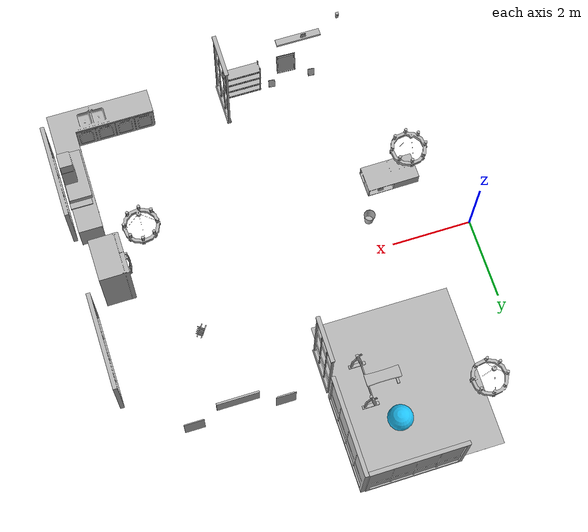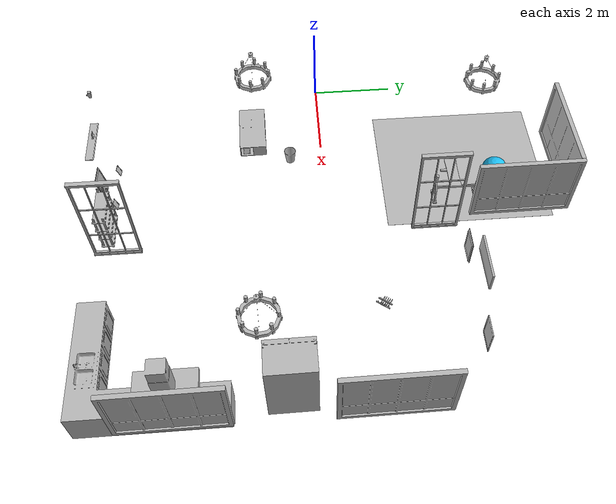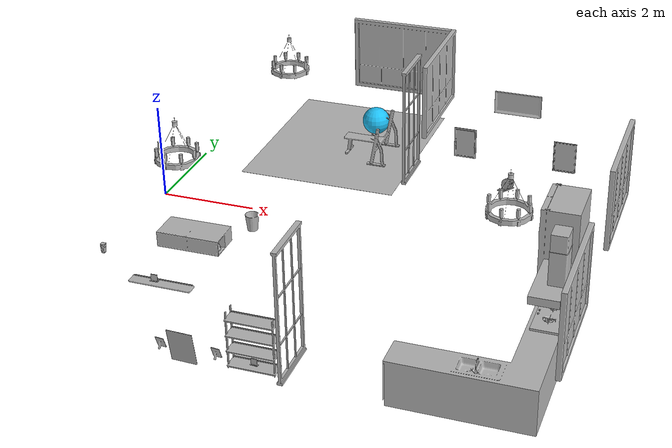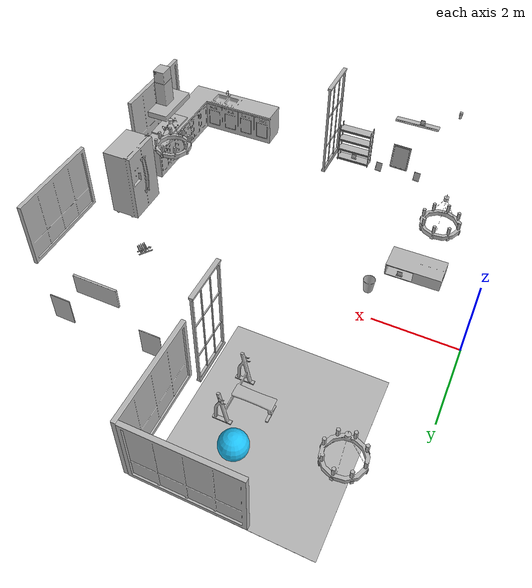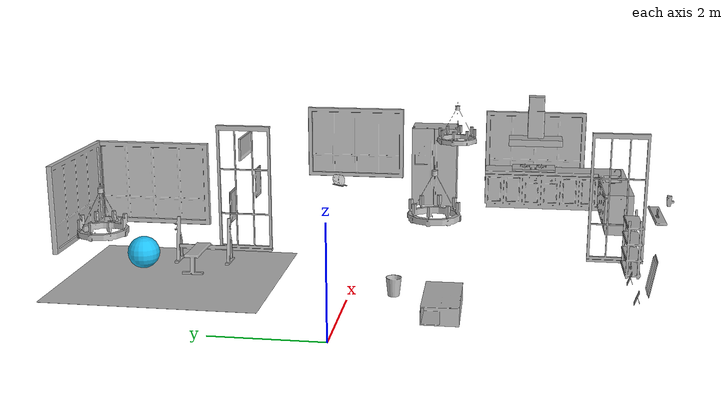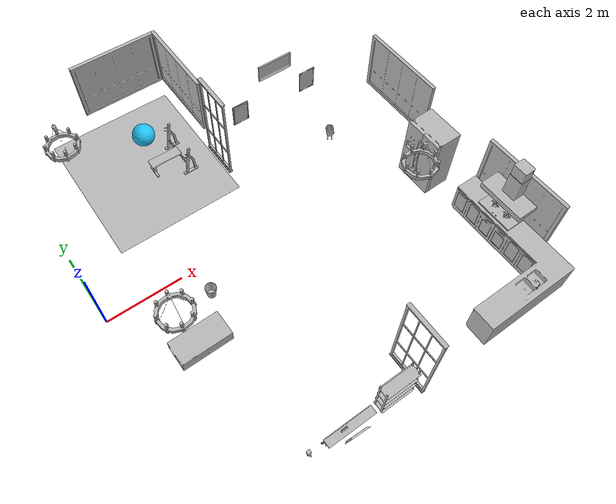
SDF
<sdf version="1.7">
 <world name="default">
  <model name="Ball_01_001">
   <frame name="aws_robomaker_residential_Ball_01::__model__" attached_to="aws_robomaker_residential_Ball_01::link">
    <pose relative_to="__model__">0 0 0 0 -0 0</pose>
   </frame>
   <link name="aws_robomaker_residential_Ball_01::link">
    <inertial>
     <mass>0.12</mass>
     <inertia>
      <ixx>0.030752</ixx>
      <ixy>0</ixy>
      <ixz>0</ixz>
      <iyy>0.030752</iyy>
      <iyz>0</iyz>
      <izz>0.030752</izz>
     </inertia>
    </inertial>
    <collision name="collision">
     <geometry><sphere><radius>0.31</radius></sphere></geometry>
     <surface>
      <friction><ode><mu>0.85</mu><mu2>0.85</mu2></ode></friction>
      <contact><ode><kd>8500</kd><max_vel>5.1</max_vel></ode></contact>
     </surface>
    </collision>
    <visual name="visual">
     <geometry><sphere><radius>0.31</radius></sphere></geometry>
     <material><diffuse>0.12 0.76 0.97 1</diffuse><ambient>0.03 0.21 0.27 1</ambient></material>
     <meta><layer>1</layer></meta>
    </visual>
    <pose relative_to="aws_robomaker_residential_Ball_01::__model__">0 0 0 0 -0 0</pose>
   </link>
   <pose>3.2955 4.22567 0.31 0 -0 0</pose>
  </model>
  <model name="Board_01_001">
   <frame name="aws_robomaker_residential_Board_01::__model__" attached_to="aws_robomaker_residential_Board_01::link">
    <pose relative_to="__model__">0 0 0 0 -0 0</pose>
   </frame>
   <link name="aws_robomaker_residential_Board_01::link">
    <inertial><mass>1</mass></inertial>
    <collision name="collision">
     <geometry>
      <mesh>
       <uri>file://models/aws_robomaker_residential_Board_01/meshes/aws_Board_01_collision.DAE</uri>
       <scale>1 1 1</scale>
      </mesh>
     </geometry>
    </collision>
    <visual name="visual">
     <geometry>
      <mesh><uri>file://models/aws_robomaker_residential_Board_01/meshes/aws_Board_01_visual.DAE</uri></mesh>
     </geometry>
     <meta><layer>2</layer></meta>
    </visual>
    <pose relative_to="aws_robomaker_residential_Board_01::__model__">0 0 0 0 -0 0</pose>
   </link>
   <static>1</static>
   <pose>2.77907 -5.3927 1.53817 0 -0 0</pose>
  </model>
  <model name="Chandelier_01_001">
   <frame name="aws_robomaker_residential_Chandelier_01::__model__" attached_to="aws_robomaker_residential_Chandelier_01::link">
    <pose relative_to="__model__">0 0 0 0 -0 0</pose>
   </frame>
   <link name="aws_robomaker_residential_Chandelier_01::link">
    <inertial><mass>1</mass></inertial>
    <collision name="collision">
     <geometry>
      <mesh>
       <uri>file://models/aws_robomaker_residential_Chandelier_01/meshes/aws_Chandelier_01_collision.DAE</uri>
       <scale>1 1 1</scale>
      </mesh>
     </geometry>
    </collision>
    <visual name="visual">
     <geometry>
      <mesh>
       <uri>file://models/aws_robomaker_residential_Chandelier_01/meshes/aws_Chandelier_01_visual.DAE</uri>
      </mesh>
     </geometry>
     <meta><layer>2</layer></meta>
    </visual>
    <pose relative_to="aws_robomaker_residential_Chandelier_01::__model__">0 0 0 0 -0 0</pose>
   </link>
   <static>1</static>
   <pose>1.22106 4.15574 1.295 0 -0 0</pose>
  </model>
  <model name="Chandelier_01_003">
   <frame name="aws_robomaker_residential_Chandelier_01::__model__" attached_to="aws_robomaker_residential_Chandelier_01::link">
    <pose relative_to="__model__">0 0 0 0 -0 0</pose>
   </frame>
   <link name="aws_robomaker_residential_Chandelier_01::link">
    <inertial><mass>1</mass></inertial>
    <collision name="collision">
     <geometry>
      <mesh>
       <uri>file://models/aws_robomaker_residential_Chandelier_01/meshes/aws_Chandelier_01_collision.DAE</uri>
       <scale>1 1 1</scale>
      </mesh>
     </geometry>
    </collision>
    <visual name="visual">
     <geometry>
      <mesh>
       <uri>file://models/aws_robomaker_residential_Chandelier_01/meshes/aws_Chandelier_01_visual.DAE</uri>
      </mesh>
     </geometry>
     <meta><layer>2</layer></meta>
    </visual>
    <pose relative_to="aws_robomaker_residential_Chandelier_01::__model__">0 0 0 0 -0 0</pose>
   </link>
   <static>1</static>
   <pose>7.82406 -1.59 1.751 0 -0 0</pose>
  </model>
  <model name="Chandelier_01_004">
   <frame name="aws_robomaker_residential_Chandelier_01::__model__" attached_to="aws_robomaker_residential_Chandelier_01::link">
    <pose relative_to="__model__">0 0 0 0 -0 0</pose>
   </frame>
   <link name="aws_robomaker_residential_Chandelier_01::link">
    <inertial><mass>1</mass></inertial>
    <collision name="collision">
     <geometry>
      <mesh>
       <uri>file://models/aws_robomaker_residential_Chandelier_01/meshes/aws_Chandelier_01_collision.DAE</uri>
       <scale>1 1 1</scale>
      </mesh>
     </geometry>
    </collision>
    <visual name="visual">
     <geometry>
      <mesh>
       <uri>file://models/aws_robomaker_residential_Chandelier_01/meshes/aws_Chandelier_01_visual.DAE</uri>
      </mesh>
     </geometry>
     <meta><layer>2</layer></meta>
    </visual>
    <pose relative_to="aws_robomaker_residential_Chandelier_01::__model__">0 0 0 0 -0 0</pose>
   </link>
   <static>1</static>
   <pose>1.22106 -1.59204 1.7873 0 -0 0</pose>
  </model>
  <model name="Carpet_01_002">
   <frame name="aws_robomaker_residential_Carpet_01::__model__" attached_to="aws_robomaker_residential_Carpet_01::link">
    <pose relative_to="__model__">0 0 0 0 -0 0</pose>
   </frame>
   <link name="aws_robomaker_residential_Carpet_01::link">
    <inertial><mass>8.1</mass></inertial>
    <collision name="collision">
     <geometry>
      <mesh>
       <uri>file://models/aws_robomaker_residential_Carpet_01/meshes/aws_Carpet_01_collision.DAE</uri>
       <scale>1 1 0.95</scale>
      </mesh>
     </geometry>
     <pose>0 0 -0.01 0 -0 0</pose>
    </collision>
    <visual name="visual">
     <geometry>
      <mesh><uri>file://models/aws_robomaker_residential_Carpet_01/meshes/aws_Carpet_01_visual.DAE</uri></mesh>
     </geometry>
     <meta><layer>1</layer></meta>
    </visual>
    <pose relative_to="aws_robomaker_residential_Carpet_01::__model__">0 0 0 0 -0 0</pose>
   </link>
   <static>1</static>
   <pose>2.85405 3.45 0.000585 0 -0 0</pose>
  </model>
  <model name="CoffeeTable_01_001">
   <frame name="aws_robomaker_residential_CoffeeTable_01::__model__" attached_to="aws_robomaker_residential_CoffeeTable_01::link">
    <pose relative_to="__model__">0 0 0 0 -0 0</pose>
   </frame>
   <link name="aws_robomaker_residential_CoffeeTable_01::link">
    <inertial>
     <mass>21.7</mass>
     <inertia><ixx>0.81375</ixx><ixy>0</ixy><ixz>0</ixz><iyy>2.76675</iyy><iyz>0</iyz><izz>3.254</izz></inertia>
    </inertial>
    <collision name="collision">
     <geometry>
      <mesh>
       <uri>file://models/aws_robomaker_residential_CoffeeTable_01/meshes/aws_CoffeeTable_01_collision.DAE</uri>
       <scale>1 1 1</scale>
      </mesh>
     </geometry>
     <surface><contact><ode><max_vel>0.01</max_vel></ode></contact></surface>
    </collision>
    <visual name="visual">
     <geometry>
      <mesh>
       <uri>file://models/aws_robomaker_residential_CoffeeTable_01/meshes/aws_CoffeeTable_01_visual.DAE</uri>
      </mesh>
     </geometry>
     <meta><layer>1</layer></meta>
    </visual>
    <pose relative_to="aws_robomaker_residential_CoffeeTable_01::__model__">0 0 0 0 -0 0</pose>
   </link>
   <static>1</static>
   <pose>1.5123 -1.73344 0.041983 0 -0 0.01</pose>
  </model>
  <model name="CookingBench_01_001">
   <frame name="aws_robomaker_residential_CookingBench_01::__model__" attached_to="aws_robomaker_residential_CookingBench_01::link">
    <pose relative_to="__model__">0 0 0 0 -0 0</pose>
   </frame>
   <link name="aws_robomaker_residential_CookingBench_01::link">
    <inertial><mass>1</mass></inertial>
    <collision name="collision">
     <geometry>
      <mesh>
       <uri>file://models/aws_robomaker_residential_CookingBench_01/meshes/aws_CookingBench_01_collision.DAE</uri>
       <scale>1 1 1</scale>
      </mesh>
     </geometry>
    </collision>
    <visual name="visual">
     <geometry>
      <mesh>
       <uri>file://models/aws_robomaker_residential_CookingBench_01/meshes/aws_CookingBench_01_visual.DAE</uri>
      </mesh>
     </geometry>
     <meta><layer>1</layer></meta>
    </visual>
    <pose relative_to="aws_robomaker_residential_CookingBench_01::__model__">0 0 0 0 -0 0</pose>
   </link>
   <pose>9.03838 -3.35114 0.90361 0 -0 3.13713</pose>
   <static>1</static>
  </model>
  <model name="FitnessEquipment_01_001">
   <frame name="aws_robomaker_residential_FitnessEquipment_01::__model__" attached_to="aws_robomaker_residential_FitnessEquipment_01::link">
    <pose relative_to="__model__">0 0 0 0 -0 0</pose>
   </frame>
   <link name="aws_robomaker_residential_FitnessEquipment_01::link">
    <inertial><mass>80</mass></inertial>
    <collision name="collision">
     <geometry>
      <mesh>
       <uri>file://models/aws_robomaker_residential_FitnessEquipment_01/meshes/aws_FitnessEquipment_01_collision.DAE</uri>
       <scale>1 1 1</scale>
      </mesh>
     </geometry>
    </collision>
    <visual name="visual">
     <geometry>
      <mesh>
       <uri>file://models/aws_robomaker_residential_FitnessEquipment_01/meshes/aws_FitnessEquipment_01_visual.DAE</uri>
      </mesh>
     </geometry>
     <meta><layer>1</layer></meta>
    </visual>
    <pose relative_to="aws_robomaker_residential_FitnessEquipment_01::__model__">0 0 0 0 -0 0</pose>
   </link>
   <static>1</static>
   <pose>3.48472 3.1691 0.003168 0 -0 0</pose>
  </model>
  <model name="FoldingDoor_02_001">
   <frame name="aws_robomaker_residential_FoldingDoor_02::__model__" attached_to="aws_robomaker_residential_FoldingDoor_02::link">
    <pose relative_to="__model__">0 0 0 0 -0 0</pose>
   </frame>
   <link name="aws_robomaker_residential_FoldingDoor_02::link">
    <inertial><mass>1</mass></inertial>
    <collision name="collision">
     <geometry>
      <mesh>
       <uri>file://models/aws_robomaker_residential_FoldingDoor_02/meshes/aws_FoldingDoor_02_collision.DAE</uri>
       <scale>1 1 1</scale>
      </mesh>
     </geometry>
    </collision>
    <visual name="visual">
     <geometry>
      <mesh>
       <uri>file://models/aws_robomaker_residential_FoldingDoor_02/meshes/aws_FoldingDoor_02_visual.DAE</uri>
      </mesh>
     </geometry>
     <meta><layer>2</layer></meta>
    </visual>
    <pose relative_to="aws_robomaker_residential_FoldingDoor_02::__model__">0 0 0 0 -0 0</pose>
   </link>
   <static>1</static>
   <pose>4.67423 2.46451 0 0 -0 3.14159</pose>
  </model>
  <model name="FoldingDoor_02_002">
   <frame name="aws_robomaker_residential_FoldingDoor_02::__model__" attached_to="aws_robomaker_residential_FoldingDoor_02::link">
    <pose relative_to="__model__">0 0 0 0 -0 0</pose>
   </frame>
   <link name="aws_robomaker_residential_FoldingDoor_02::link">
    <inertial><mass>1</mass></inertial>
    <collision name="collision">
     <geometry>
      <mesh>
       <uri>file://models/aws_robomaker_residential_FoldingDoor_02/meshes/aws_FoldingDoor_02_collision.DAE</uri>
       <scale>1 1 1</scale>
      </mesh>
     </geometry>
    </collision>
    <visual name="visual">
     <geometry>
      <mesh>
       <uri>file://models/aws_robomaker_residential_FoldingDoor_02/meshes/aws_FoldingDoor_02_visual.DAE</uri>
      </mesh>
     </geometry>
     <meta><layer>2</layer></meta>
    </visual>
    <pose relative_to="aws_robomaker_residential_FoldingDoor_02::__model__">0 0 0 0 -0 0</pose>
   </link>
   <static>1</static>
   <pose>4.8912 -4.84968 0 0 -0 0</pose>
  </model>
  <model name="KitchenCabinet_01_001">
   <frame name="aws_robomaker_residential_KitchenCabinet_01::__model__" attached_to="aws_robomaker_residential_KitchenCabinet_01::link">
    <pose relative_to="__model__">0 0 0 0 -0 0</pose>
   </frame>
   <link name="aws_robomaker_residential_KitchenCabinet_01::link">
    <inertial><mass>1</mass></inertial>
    <collision name="collision">
     <geometry>
      <mesh>
       <uri>file://models/aws_robomaker_residential_KitchenCabinet_01/meshes/aws_KitchenCabinet_01_collision.DAE</uri>
       <scale>1 1 1</scale>
      </mesh>
     </geometry>
    </collision>
    <visual name="visual">
     <geometry>
      <mesh>
       <uri>file://models/aws_robomaker_residential_KitchenCabinet_01/meshes/aws_KitchenCabinet_01_visual.DAE</uri>
      </mesh>
     </geometry>
     <meta><layer>1</layer></meta>
    </visual>
    <pose relative_to="aws_robomaker_residential_KitchenCabinet_01::__model__">0 0 0 0 -0 0</pose>
   </link>
   <static>1</static>
   <pose>8.00201 -3.83651 0.012068 0 0 -3.14</pose>
  </model>
  <model name="LightC_01_001">
   <frame name="aws_robomaker_residential_LightC_01::__model__" attached_to="aws_robomaker_residential_LightC_01::link">
    <pose relative_to="__model__">0 0 0 0 -0 0</pose>
   </frame>
   <link name="aws_robomaker_residential_LightC_01::link">
    <inertial><mass>1</mass></inertial>
    <collision name="collision">
     <geometry>
      <mesh>
       <uri>file://models/aws_robomaker_residential_LightC_01/meshes/aws_LightC_01_collision.DAE</uri>
       <scale>1 1 1</scale>
      </mesh>
     </geometry>
    </collision>
    <visual name="visual">
     <geometry>
      <mesh><uri>file://models/aws_robomaker_residential_LightC_01/meshes/aws_LightC_01_visual.DAE</uri></mesh>
     </geometry>
     <meta><layer>2</layer></meta>
    </visual>
    <pose relative_to="aws_robomaker_residential_LightC_01::__model__">0 0 0 0 -0 0</pose>
   </link>
   <static>1</static>
   <pose>1.76957 -5.44437 2 0 -0 0</pose>
  </model>
  <model name="PortraitB_02">
   <frame name="aws_robomaker_residential_PortraitB_02::__model__" attached_to="aws_robomaker_residential_PortraitB_02::link">
    <pose relative_to="__model__">0 0 0 0 -0 0</pose>
   </frame>
   <link name="aws_robomaker_residential_PortraitB_02::link">
    <inertial><mass>1</mass></inertial>
    <collision name="collision">
     <geometry>
      <mesh>
       <uri>file://models/aws_robomaker_residential_PortraitB_02/meshes/aws_PortraitB_01_collision.DAE</uri>
       <scale>1 1 1</scale>
      </mesh>
     </geometry>
    </collision>
    <visual name="visual">
     <geometry>
      <mesh>
       <uri>file://models/aws_robomaker_residential_PortraitB_02/meshes/aws_PortraitB_01_visual.DAE</uri>
      </mesh>
     </geometry>
     <meta><layer>2</layer></meta>
    </visual>
    <pose relative_to="aws_robomaker_residential_PortraitB_02::__model__">0 0 0 0 -0 0</pose>
   </link>
   <static>1</static>
   <pose>5.73702 3.08031 0.3 0 -0 0</pose>
  </model>
  <model name="PortraitB_03">
   <frame name="aws_robomaker_residential_PortraitB_03::__model__" attached_to="aws_robomaker_residential_PortraitB_03::link">
    <pose relative_to="__model__">0 0 0 0 -0 0</pose>
   </frame>
   <link name="aws_robomaker_residential_PortraitB_03::link">
    <inertial><mass>1</mass></inertial>
    <collision name="collision">
     <geometry>
      <mesh>
       <uri>file://models/aws_robomaker_residential_PortraitB_03/meshes/aws_PortraitB_01_collision.DAE</uri>
       <scale>1 1 1</scale>
      </mesh>
     </geometry>
    </collision>
    <visual name="visual">
     <geometry>
      <mesh>
       <uri>file://models/aws_robomaker_residential_PortraitB_03/meshes/aws_PortraitB_01_visual.DAE</uri>
      </mesh>
     </geometry>
     <meta><layer>2</layer></meta>
    </visual>
    <pose relative_to="aws_robomaker_residential_PortraitB_03::__model__">0 0 0 0 -0 0</pose>
   </link>
   <static>1</static>
   <pose>3.07138 -5.34937 0.005494 -0.168428 -0 3.10423</pose>
  </model>
  <model name="PortraitA_02">
   <frame name="aws_robomaker_residential_PortraitA_02::__model__" attached_to="aws_robomaker_residential_PortraitA_02::link">
    <pose relative_to="__model__">0 0 0 0 -0 0</pose>
   </frame>
   <link name="aws_robomaker_residential_PortraitA_02::link">
    <inertial><mass>1</mass></inertial>
    <collision name="collision">
     <geometry>
      <mesh>
       <uri>file://models/aws_robomaker_residential_PortraitA_02/meshes/aws_PortraitA_01_collision.DAE</uri>
       <scale>1 1 1</scale>
      </mesh>
     </geometry>
    </collision>
    <visual name="visual">
     <geometry>
      <mesh>
       <uri>file://models/aws_robomaker_residential_PortraitA_02/meshes/aws_PortraitA_01_visual.DAE</uri>
      </mesh>
     </geometry>
     <meta><layer>2</layer></meta>
    </visual>
    <pose relative_to="aws_robomaker_residential_PortraitA_02::__model__">0 0 0 0 -0 0</pose>
   </link>
   <static>1</static>
   <pose>7.93702 3.08031 0.3 0 -0 3.14</pose>
  </model>
  <model name="PortraitD_02">
   <frame name="aws_robomaker_residential_PortraitD_02::__model__" attached_to="aws_robomaker_residential_PortraitD_02::link">
    <pose relative_to="__model__">0 0 0 0 -0 0</pose>
   </frame>
   <link name="aws_robomaker_residential_PortraitD_02::link">
    <inertial><mass>1.5</mass></inertial>
    <collision name="collision">
     <geometry>
      <mesh>
       <uri>file://models/aws_robomaker_residential_PortraitD_02/meshes/aws_PortraitD_01_collision.DAE</uri>
       <scale>1 1 1</scale>
      </mesh>
     </geometry>
    </collision>
    <visual name="visual">
     <geometry>
      <mesh>
       <uri>file://models/aws_robomaker_residential_PortraitD_02/meshes/aws_PortraitD_01_visual.DAE</uri>
      </mesh>
     </geometry>
     <meta><layer>2</layer></meta>
    </visual>
    <pose relative_to="aws_robomaker_residential_PortraitD_02::__model__">0 0 0 0 -0 0</pose>
   </link>
   <static>1</static>
   <pose>6.87018 3.08031 1.48844 0 -0 0</pose>
  </model>
  <model name="DeskPortraitA_02">
   <frame name="aws_robomaker_residential_DeskPortraitA_02::__model__" attached_to="aws_robomaker_residential_DeskPortraitA_02::link">
    <pose relative_to="__model__">0 0 0 0 -0 0</pose>
   </frame>
   <link name="aws_robomaker_residential_DeskPortraitA_02::link">
    <inertial>
     <mass>1</mass>
     <inertia><ixx>0.0835</ixx><ixy>0</ixy><ixz>0</ixz><iyy>0.16</iyy><iyz>0</iyz><izz>0.08347</izz></inertia>
    </inertial>
    <collision name="collision">
     <geometry>
      <mesh>
       <uri>file://models/aws_robomaker_residential_DeskPortraitA_02/meshes/aws_DeskPortraitA_01_collision.DAE</uri>
       <scale>1 1 1</scale>
      </mesh>
     </geometry>
    </collision>
    <visual name="visual">
     <geometry>
      <mesh>
       <uri>file://models/aws_robomaker_residential_DeskPortraitA_02/meshes/aws_DeskPortraitA_01_visual.DAE</uri>
      </mesh>
     </geometry>
     <meta><layer>1</layer></meta>
    </visual>
    <pose relative_to="aws_robomaker_residential_DeskPortraitA_02::__model__">0 0 0 0 -0 0</pose>
   </link>
   <pose>2.04609 -1.89292 0.065168 -0.000539 -3e-06 1.57625</pose>
  </model>
  <model name="DeskPortraitD_01">
   <frame name="aws_robomaker_residential_DeskPortraitD_01::__model__" attached_to="aws_robomaker_residential_DeskPortraitD_01::link">
    <pose relative_to="__model__">0 0 0 0 -0 0</pose>
   </frame>
   <link name="aws_robomaker_residential_DeskPortraitD_01::link">
    <inertial>
     <mass>0.4</mass>
     <inertia><ixx>0.0616</ixx><ixy>0</ixy><ixz>0</ixz><iyy>0.1313</iyy><iyz>0</iyz><izz>0.0803</izz></inertia>
    </inertial>
    <collision name="collision">
     <geometry>
      <mesh>
       <uri>file://models/aws_robomaker_residential_DeskPortraitD_01/meshes/aws_DeskPortraitD_01_collision.DAE</uri>
       <scale>1 1 1</scale>
      </mesh>
     </geometry>
     <surface>
      <friction><ode><mu>0.7</mu><mu2>0.7</mu2></ode></friction>
      <contact><ode><kd>28500</kd></ode></contact>
     </surface>
    </collision>
    <visual name="visual">
     <geometry>
      <mesh>
       <uri>file://models/aws_robomaker_residential_DeskPortraitD_01/meshes/aws_DeskPortraitD_01_visual.DAE</uri>
      </mesh>
     </geometry>
     <meta><layer>1</layer></meta>
    </visual>
    <pose relative_to="aws_robomaker_residential_DeskPortraitD_01::__model__">0 0 0 0 -0 0</pose>
   </link>
   <pose>2.64556 -5.37622 1.57416 0 -2e-06 -3.11283</pose>
  </model>
  <model name="DeskPortraitD_03">
   <frame name="aws_robomaker_residential_DeskPortraitD_03::__model__" attached_to="aws_robomaker_residential_DeskPortraitD_03::link">
    <pose relative_to="__model__">0 0 0 0 -0 0</pose>
   </frame>
   <link name="aws_robomaker_residential_DeskPortraitD_03::link">
    <inertial>
     <mass>0.4</mass>
     <inertia><ixx>0.0616</ixx><ixy>0</ixy><ixz>0</ixz><iyy>0.1313</iyy><iyz>0</iyz><izz>0.0803</izz></inertia>
    </inertial>
    <collision name="collision">
     <geometry>
      <mesh>
       <uri>file://models/aws_robomaker_residential_DeskPortraitD_03/meshes/aws_DeskPortraitD_01_collision.DAE</uri>
       <scale>1 1 1</scale>
      </mesh>
     </geometry>
     <surface>
      <friction><ode><mu>0.7</mu><mu2>0.7</mu2></ode></friction>
      <contact><ode><kd>28500</kd></ode></contact>
     </surface>
    </collision>
    <visual name="visual">
     <geometry>
      <mesh>
       <uri>file://models/aws_robomaker_residential_DeskPortraitD_03/meshes/aws_DeskPortraitD_01_visual.DAE</uri>
      </mesh>
     </geometry>
     <meta><layer>1</layer></meta>
    </visual>
    <pose relative_to="aws_robomaker_residential_DeskPortraitD_03::__model__">0 0 0 0 -0 0</pose>
   </link>
   <pose>1.82673 -1.46488 0.064785 4e-06 1e-06 -3.11438</pose>
  </model>
  <model name="DeskPortraitD_04">
   <frame name="aws_robomaker_residential_DeskPortraitD_04::__model__" attached_to="aws_robomaker_residential_DeskPortraitD_04::link">
    <pose relative_to="__model__">0 0 0 0 -0 0</pose>
   </frame>
   <link name="aws_robomaker_residential_DeskPortraitD_04::link">
    <inertial>
     <mass>0.4</mass>
     <inertia><ixx>0.0616</ixx><ixy>0</ixy><ixz>0</ixz><iyy>0.1313</iyy><iyz>0</iyz><izz>0.0803</izz></inertia>
    </inertial>
    <collision name="collision">
     <geometry>
      <mesh>
       <uri>file://models/aws_robomaker_residential_DeskPortraitD_04/meshes/aws_DeskPortraitD_01_collision.DAE</uri>
       <scale>1 1 1</scale>
      </mesh>
     </geometry>
     <surface>
      <friction><ode><mu>0.7</mu><mu2>0.7</mu2></ode></friction>
      <contact><ode><kd>28500</kd></ode></contact>
     </surface>
    </collision>
    <visual name="visual">
     <geometry>
      <mesh>
       <uri>file://models/aws_robomaker_residential_DeskPortraitD_04/meshes/aws_DeskPortraitD_01_visual.DAE</uri>
      </mesh>
     </geometry>
     <meta><layer>1</layer></meta>
    </visual>
    <pose relative_to="aws_robomaker_residential_DeskPortraitD_04::__model__">0 0 0 0 -0 0</pose>
   </link>
   <pose>4.30003 -5.17654 0.083426 4e-06 -1e-05 3.0509</pose>
  </model>
  <model name="DeskPortraitB_01">
   <frame name="aws_robomaker_residential_DeskPortraitB_01::__model__" attached_to="aws_robomaker_residential_DeskPortraitB_01::link">
    <pose relative_to="__model__">0 0 0 0 -0 0</pose>
   </frame>
   <link name="aws_robomaker_residential_DeskPortraitB_01::link">
    <inertial>
     <mass>1</mass>
     <inertia><ixx>0.0135</ixx><ixy>0</ixy><ixz>0</ixz><iyy>0.02</iyy><iyz>0</iyz><izz>0.01347</izz></inertia>
    </inertial>
    <collision name="collision">
     <geometry>
      <mesh>
       <uri>file://models/aws_robomaker_residential_DeskPortraitB_01/meshes/aws_DeskPortraitB_01_collision.DAE</uri>
       <scale>1 1 1</scale>
      </mesh>
     </geometry>
    </collision>
    <visual name="visual">
     <geometry>
      <mesh>
       <uri>file://models/aws_robomaker_residential_DeskPortraitB_01/meshes/aws_DeskPortraitB_01_visual.DAE</uri>
      </mesh>
     </geometry>
     <meta><layer>1</layer></meta>
    </visual>
    <pose relative_to="aws_robomaker_residential_DeskPortraitB_01::__model__">0 0 0 0 -0 0</pose>
   </link>
   <pose>3.54719 -5.08591 -0.01266 -0.336624 -2e-06 3.04682</pose>
  </model>
  <model name="DeskPortraitB_02">
   <frame name="aws_robomaker_residential_DeskPortraitB_02::__model__" attached_to="aws_robomaker_residential_DeskPortraitB_02::link">
    <pose relative_to="__model__">0 0 0 0 -0 0</pose>
   </frame>
   <link name="aws_robomaker_residential_DeskPortraitB_02::link">
    <inertial>
     <mass>1</mass>
     <inertia><ixx>0.0135</ixx><ixy>0</ixy><ixz>0</ixz><iyy>0.02</iyy><iyz>0</iyz><izz>0.01347</izz></inertia>
    </inertial>
    <collision name="collision">
     <geometry>
      <mesh>
       <uri>file://models/aws_robomaker_residential_DeskPortraitB_02/meshes/aws_DeskPortraitB_01_collision.DAE</uri>
       <scale>1 1 1</scale>
      </mesh>
     </geometry>
    </collision>
    <visual name="visual">
     <geometry>
      <mesh>
       <uri>file://models/aws_robomaker_residential_DeskPortraitB_02/meshes/aws_DeskPortraitB_01_visual.DAE</uri>
      </mesh>
     </geometry>
     <meta><layer>1</layer></meta>
    </visual>
    <pose relative_to="aws_robomaker_residential_DeskPortraitB_02::__model__">0 0 0 0 -0 0</pose>
   </link>
   <pose>2.48627 -5.10252 -0.01266 -0.336622 0 3.0468</pose>
  </model>
  <model name="Rangehood_01_001">
   <frame name="aws_robomaker_residential_Rangehood_01::__model__" attached_to="aws_robomaker_residential_Rangehood_01::link">
    <pose relative_to="__model__">0 0 0 0 -0 0</pose>
   </frame>
   <link name="aws_robomaker_residential_Rangehood_01::link">
    <inertial><mass>1</mass></inertial>
    <collision name="collision">
     <geometry>
      <mesh>
       <uri>file://models/aws_robomaker_residential_Rangehood_01/meshes/aws_Rangehood_01_collision.DAE</uri>
       <scale>1 1 1</scale>
      </mesh>
     </geometry>
    </collision>
    <visual name="visual">
     <geometry>
      <mesh>
       <uri>file://models/aws_robomaker_residential_Rangehood_01/meshes/aws_Rangehood_01_visual.DAE</uri>
      </mesh>
     </geometry>
     <meta><layer>2</layer></meta>
    </visual>
    <pose relative_to="aws_robomaker_residential_Rangehood_01::__model__">0 0 0 0 -0 0</pose>
   </link>
   <static>1</static>
   <pose>9.01979 -3.36994 1.50761 0 -0 0</pose>
  </model>
  <model name="Refrigerator_01_001">
   <frame name="aws_robomaker_residential_Refrigerator_01::__model__" attached_to="aws_robomaker_residential_Refrigerator_01::link">
    <pose relative_to="__model__">0 0 0 0 -0 0</pose>
   </frame>
   <link name="aws_robomaker_residential_Refrigerator_01::link">
    <inertial><mass>1</mass></inertial>
    <collision name="collision">
     <geometry>
      <mesh>
       <uri>file://models/aws_robomaker_residential_Refrigerator_01/meshes/aws_Refrigerator_01_collision.DAE</uri>
       <scale>1 1 1</scale>
      </mesh>
     </geometry>
    </collision>
    <visual name="visual">
     <geometry>
      <mesh>
       <uri>file://models/aws_robomaker_residential_Refrigerator_01/meshes/aws_Refrigerator_01_visual.DAE</uri>
      </mesh>
     </geometry>
     <meta><layer>1</layer></meta>
    </visual>
    <pose relative_to="aws_robomaker_residential_Refrigerator_01::__model__">0 0 0 0 -0 0</pose>
   </link>
   <static>1</static>
   <pose>8.70273 -1.03203 0 0 0 -1.5635</pose>
  </model>
  <model name="ShoeRack_01_001">
   <frame name="aws_robomaker_residential_ShoeRack_01::__model__" attached_to="aws_robomaker_residential_ShoeRack_01::link">
    <pose relative_to="__model__">0 0 0 0 -0 0</pose>
   </frame>
   <link name="aws_robomaker_residential_ShoeRack_01::link">
    <inertial>
     <mass>6</mass>
     <inertia>
      <ixx>0.02</ixx>
      <ixy>0</ixy>
      <ixz>0</ixz>
      <iyy>0.04</iyy>
      <iyz>0</iyz>
      <ixx>0.02</ixx>
      <izz>1</izz>
     </inertia>
    </inertial>
    <collision name="collision">
     <geometry>
      <mesh>
       <uri>file://models/aws_robomaker_residential_ShoeRack_01/meshes/aws_ShoeRack_01_collision.DAE</uri>
       <scale>1 1 1</scale>
      </mesh>
     </geometry>
     <surface>
      <friction><ode><mu>0.2</mu><mu2>0.2</mu2></ode></friction>
      <contact><ode><kd>2500</kd></ode></contact>
     </surface>
    </collision>
    <visual name="visual">
     <geometry>
      <mesh><uri>file://models/aws_robomaker_residential_ShoeRack_01/meshes/aws_ShoeRack_01_visual.DAE</uri></mesh>
     </geometry>
     <meta><layer>1</layer></meta>
    </visual>
    <pose relative_to="aws_robomaker_residential_ShoeRack_01::__model__">0 0 0 0 -0 0</pose>
   </link>
   <pose>4.29802 -5.17357 0.004432 -3e-06 9e-06 5e-06</pose>
  </model>
  <model name="Tableware_01_001">
   <frame name="aws_robomaker_residential_Tableware_01::__model__" attached_to="aws_robomaker_residential_Tableware_01::link">
    <pose relative_to="__model__">0 0 0 0 -0 0</pose>
   </frame>
   <link name="aws_robomaker_residential_Tableware_01::link">
    <inertial>
     <mass>1</mass>
     <inertia><ixx>1</ixx><ixy>0</ixy><ixz>0</ixz><iyy>1</iyy><iyz>0</iyz><izz>1</izz></inertia>
    </inertial>
    <collision name="collision">
     <geometry>
      <mesh>
       <uri>file://models/aws_robomaker_residential_Tableware_01/meshes/aws_Tableware_01_collision.DAE</uri>
       <scale>1 1 1</scale>
      </mesh>
     </geometry>
    </collision>
    <visual name="visual">
     <geometry>
      <mesh>
       <uri>file://models/aws_robomaker_residential_Tableware_01/meshes/aws_Tableware_01_visual.DAE</uri>
      </mesh>
     </geometry>
     <meta><layer>1</layer></meta>
    </visual>
    <pose relative_to="aws_robomaker_residential_Tableware_01::__model__">0 0 0 0 -0 0</pose>
   </link>
   <pose>7.16681 0.984424 0.818953 -6.2e-05 5.1e-05 1.04329</pose>
  </model>
  <model name="Trash_01_001">
   <frame name="aws_robomaker_residential_Trash_01::__model__" attached_to="aws_robomaker_residential_Trash_01::link">
    <pose relative_to="__model__">0 0 0 0 -0 0</pose>
   </frame>
   <link name="aws_robomaker_residential_Trash_01::link">
    <inertial>
     <mass>0.1</mass>
     <inertia><ixy>0</ixy><ixz>0</ixz><iyz>0</iyz><ixx>0.05288</ixx><iyy>0.05288</iyy><izz>0.09132</izz></inertia>
    </inertial>
    <collision name="collision">
     <geometry>
      <mesh>
       <uri>file://models/aws_robomaker_residential_Trash_01/meshes/aws_Trash_01_collision.DAE</uri>
       <scale>1 1 1</scale>
      </mesh>
     </geometry>
    </collision>
    <visual name="visual">
     <geometry>
      <mesh><uri>file://models/aws_robomaker_residential_Trash_01/meshes/aws_Trash_01_visual.DAE</uri></mesh>
     </geometry>
     <meta><layer>1</layer></meta>
    </visual>
    <pose relative_to="aws_robomaker_residential_Trash_01::__model__">0 0 0 0 -0 0</pose>
   </link>
   <pose>2.36015 -0.796238 0.000894 1e-06 -0 0</pose>
  </model>
  <model name="RoomWindow_01_003">
   <frame name="aws_robomaker_residential_RoomWindow_01::__model__" attached_to="aws_robomaker_residential_RoomWindow_01::link">
    <pose relative_to="__model__">0 0 0 0 -0 0</pose>
   </frame>
   <link name="aws_robomaker_residential_RoomWindow_01::link">
    <inertial><mass>1</mass></inertial>
    <collision name="collision">
     <geometry>
      <mesh>
       <uri>file://models/aws_robomaker_residential_RoomWindow_01/meshes/aws_RoomWindow_01_collision.DAE</uri>
       <scale>1 1 1</scale>
      </mesh>
     </geometry>
    </collision>
    <visual name="visual">
     <geometry>
      <mesh>
       <uri>file://models/aws_robomaker_residential_RoomWindow_01/meshes/aws_RoomWindow_01_visual.DAE</uri>
      </mesh>
     </geometry>
     <meta><layer>2</layer></meta>
    </visual>
    <pose relative_to="aws_robomaker_residential_RoomWindow_01::__model__">0 0 0 0 -0 0</pose>
   </link>
   <static>1</static>
   <pose>9.42262 -3.37398 0.502739 0 0 -3.1361</pose>
  </model>
  <model name="RoomWindow_01_004">
   <frame name="aws_robomaker_residential_RoomWindow_01::__model__" attached_to="aws_robomaker_residential_RoomWindow_01::link">
    <pose relative_to="__model__">0 0 0 0 -0 0</pose>
   </frame>
   <link name="aws_robomaker_residential_RoomWindow_01::link">
    <inertial><mass>1</mass></inertial>
    <collision name="collision">
     <geometry>
      <mesh>
       <uri>file://models/aws_robomaker_residential_RoomWindow_01/meshes/aws_RoomWindow_01_collision.DAE</uri>
       <scale>1 1 1</scale>
      </mesh>
     </geometry>
    </collision>
    <visual name="visual">
     <geometry>
      <mesh>
       <uri>file://models/aws_robomaker_residential_RoomWindow_01/meshes/aws_RoomWindow_01_visual.DAE</uri>
      </mesh>
     </geometry>
     <meta><layer>2</layer></meta>
    </visual>
    <pose relative_to="aws_robomaker_residential_RoomWindow_01::__model__">0 0 0 0 -0 0</pose>
   </link>
   <static>1</static>
   <pose>9.42256 0.96852 0.496581 0 0 -3.1361</pose>
  </model>
  <model name="RoomWindow_01_005">
   <frame name="aws_robomaker_residential_RoomWindow_01::__model__" attached_to="aws_robomaker_residential_RoomWindow_01::link">
    <pose relative_to="__model__">0 0 0 0 -0 0</pose>
   </frame>
   <link name="aws_robomaker_residential_RoomWindow_01::link">
    <inertial><mass>1</mass></inertial>
    <collision name="collision">
     <geometry>
      <mesh>
       <uri>file://models/aws_robomaker_residential_RoomWindow_01/meshes/aws_RoomWindow_01_collision.DAE</uri>
       <scale>1 1 1</scale>
      </mesh>
     </geometry>
    </collision>
    <visual name="visual">
     <geometry>
      <mesh>
       <uri>file://models/aws_robomaker_residential_RoomWindow_01/meshes/aws_RoomWindow_01_visual.DAE</uri>
      </mesh>
     </geometry>
     <meta><layer>2</layer></meta>
    </visual>
    <pose relative_to="aws_robomaker_residential_RoomWindow_01::__model__">0 0 0 0 -0 0</pose>
   </link>
   <static>1</static>
   <pose>4.72232 4.47028 0.502739 0 0 -3.1361</pose>
  </model>
  <model name="RoomWindow_01_006">
   <frame name="aws_robomaker_residential_RoomWindow_01::__model__" attached_to="aws_robomaker_residential_RoomWindow_01::link">
    <pose relative_to="__model__">0 0 0 0 -0 0</pose>
   </frame>
   <link name="aws_robomaker_residential_RoomWindow_01::link">
    <inertial><mass>1</mass></inertial>
    <collision name="collision">
     <geometry>
      <mesh>
       <uri>file://models/aws_robomaker_residential_RoomWindow_01/meshes/aws_RoomWindow_01_collision.DAE</uri>
       <scale>1 1 1</scale>
      </mesh>
     </geometry>
    </collision>
    <visual name="visual">
     <geometry>
      <mesh>
       <uri>file://models/aws_robomaker_residential_RoomWindow_01/meshes/aws_RoomWindow_01_visual.DAE</uri>
      </mesh>
     </geometry>
     <meta><layer>2</layer></meta>
    </visual>
    <pose relative_to="aws_robomaker_residential_RoomWindow_01::__model__">0 0 0 0 -0 0</pose>
   </link>
   <static>1</static>
   <pose>3.48852 5.60069 0.502739 0 0 -1.56627</pose>
  </model>
 </world>
</sdf>
